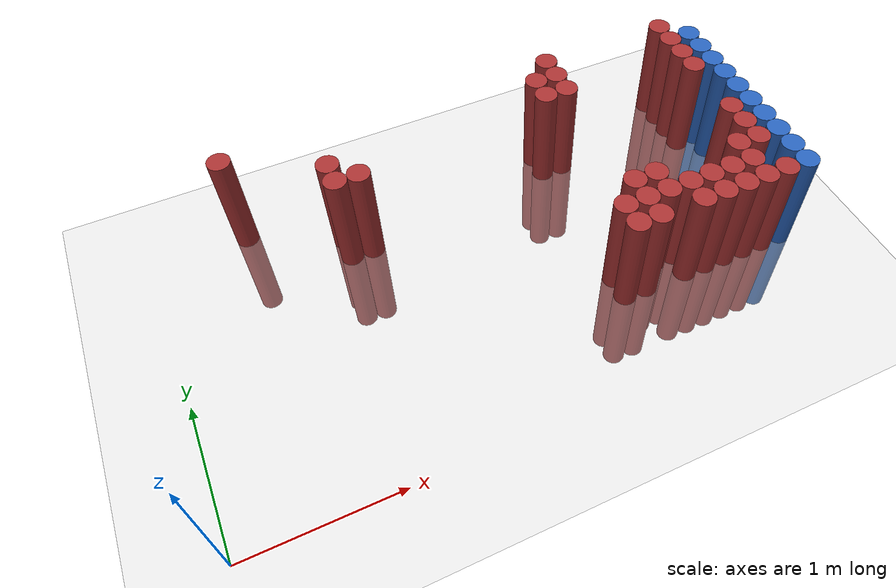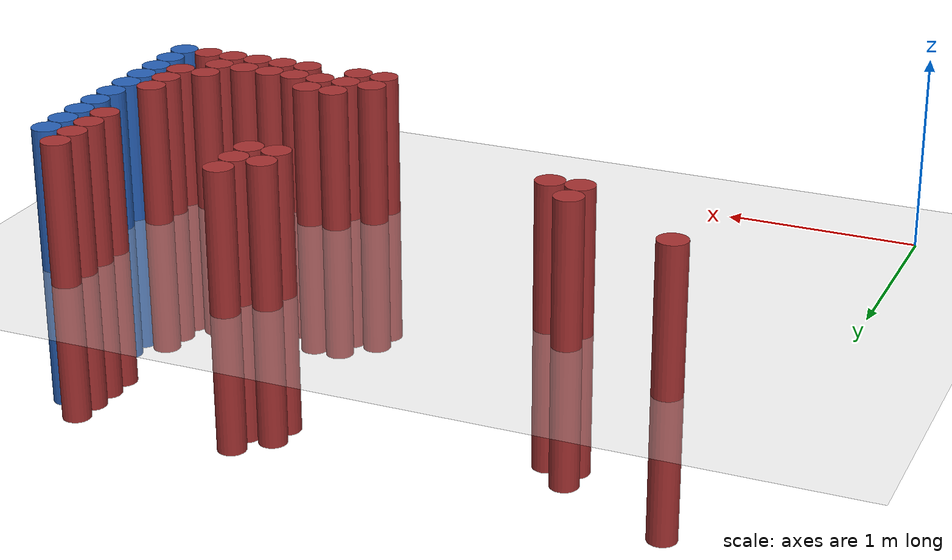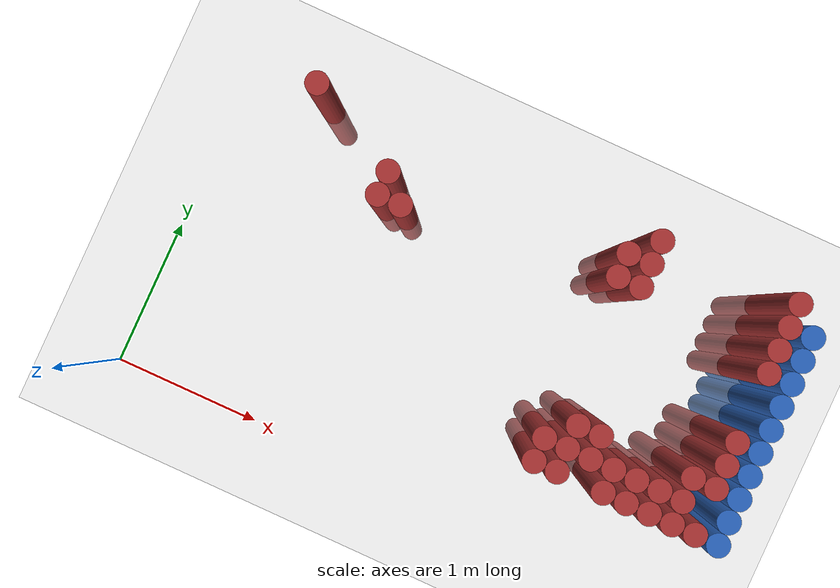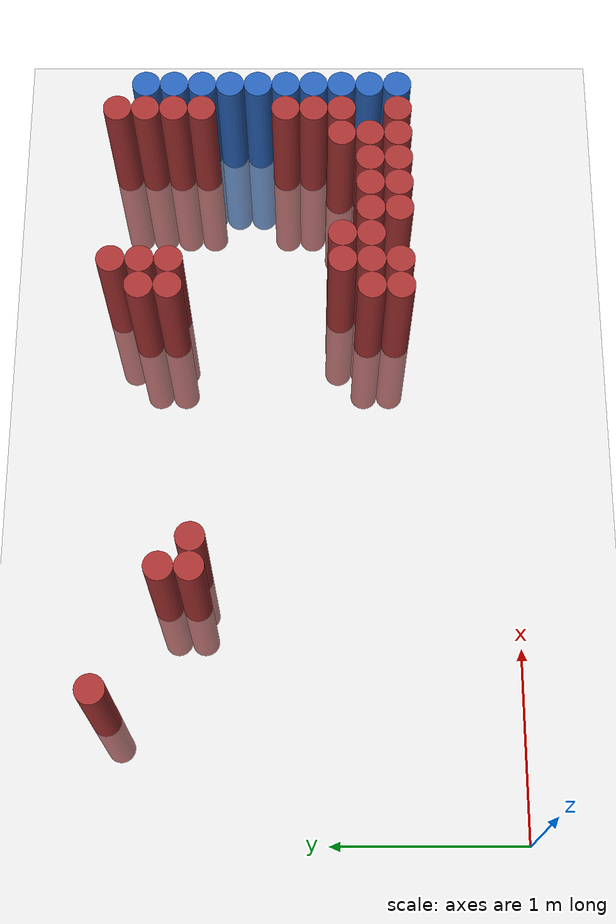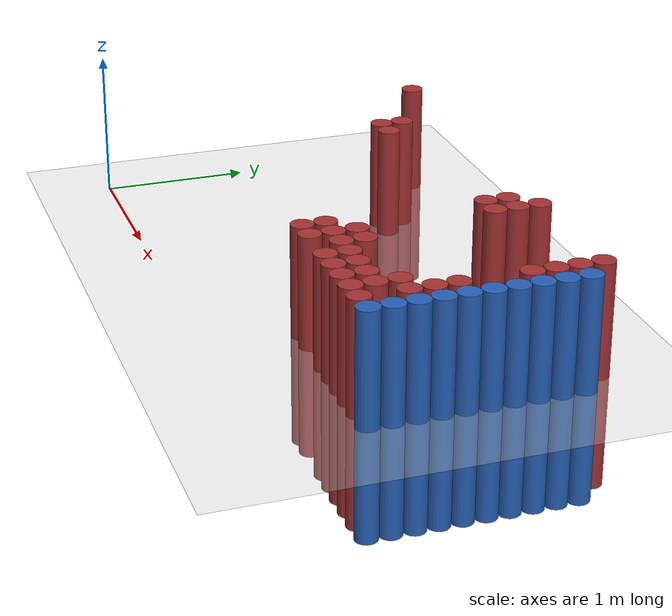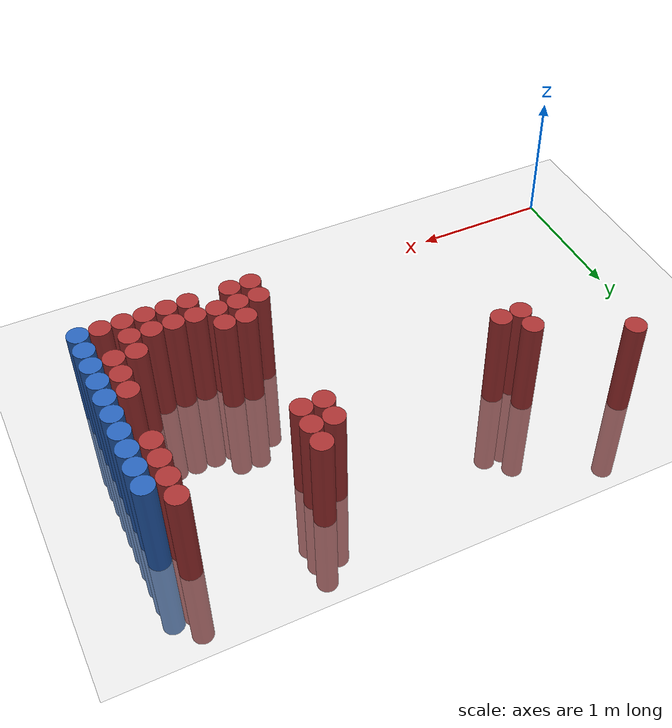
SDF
<sdf version="1.6">
 <world name="default">
  <model name="ground_plane">
   <static>1</static>
   <link name="link">
    <collision name="collision">
     <geometry><plane><normal>0 0 1</normal><size>100 100</size></plane></geometry>
     <surface><friction><ode><mu>100</mu><mu2>50</mu2></ode></friction></surface>
    </collision>
    <visual name="visual">
     <cast_shadows>0</cast_shadows>
     <geometry><plane><normal>0 0 1</normal><size>100 100</size></plane></geometry>
     <material>
      <script><uri>file://media/materials/scripts/gazebo.material</uri><name>Gazebo/Grey</name></script>
     </material>
    </visual>
   </link>
  </model>
  <model name="unit_cylinder_122">
   <static>1</static>
   <pose>3.925000 0.625000 0.000000 0.000000 0.000000 0.000000</pose>
   <link name="link">
    <inertial>
     <mass>1</mass>
     <inertia><ixx>0.145833</ixx><ixy>0</ixy><ixz>0</ixz><iyy>0.145833</iyy><iyz>0</iyz><izz>0.125</izz></inertia>
    </inertial>
    <collision name="collision">
     <geometry><cylinder><radius>0.075000</radius><length>1.5</length></cylinder></geometry>
    </collision>
    <visual name="visual">
     <geometry><cylinder><radius>0.075000</radius><length>1.5</length></cylinder></geometry>
     <material>
      <ambient>0.152000 0.379000 0.720000 1</ambient>
      <diffuse>0.152000 0.379000 0.720000 1</diffuse>
     </material>
     <material>
      <script><name>Gazebo/Grey</name><uri>file://media/materials/scripts/gazebo.material</uri></script>
     </material>
    </visual>
   </link>
  </model>
  <model name="unit_cylinder_124">
   <static>1</static>
   <pose>3.925000 0.775000 0.000000 0.000000 0.000000 0.000000</pose>
   <link name="link">
    <inertial>
     <mass>1</mass>
     <inertia><ixx>0.145833</ixx><ixy>0</ixy><ixz>0</ixz><iyy>0.145833</iyy><iyz>0</iyz><izz>0.125</izz></inertia>
    </inertial>
    <collision name="collision">
     <geometry><cylinder><radius>0.075000</radius><length>1.5</length></cylinder></geometry>
    </collision>
    <visual name="visual">
     <geometry><cylinder><radius>0.075000</radius><length>1.5</length></cylinder></geometry>
     <material>
      <ambient>0.152000 0.379000 0.720000 1</ambient>
      <diffuse>0.152000 0.379000 0.720000 1</diffuse>
     </material>
     <material>
      <script><name>Gazebo/Grey</name><uri>file://media/materials/scripts/gazebo.material</uri></script>
     </material>
    </visual>
   </link>
  </model>
  <model name="unit_cylinder_126">
   <static>1</static>
   <pose>3.925000 0.925000 0.000000 0.000000 0.000000 0.000000</pose>
   <link name="link">
    <inertial>
     <mass>1</mass>
     <inertia><ixx>0.145833</ixx><ixy>0</ixy><ixz>0</ixz><iyy>0.145833</iyy><iyz>0</iyz><izz>0.125</izz></inertia>
    </inertial>
    <collision name="collision">
     <geometry><cylinder><radius>0.075000</radius><length>1.5</length></cylinder></geometry>
    </collision>
    <visual name="visual">
     <geometry><cylinder><radius>0.075000</radius><length>1.5</length></cylinder></geometry>
     <material>
      <ambient>0.152000 0.379000 0.720000 1</ambient>
      <diffuse>0.152000 0.379000 0.720000 1</diffuse>
     </material>
     <material>
      <script><name>Gazebo/Grey</name><uri>file://media/materials/scripts/gazebo.material</uri></script>
     </material>
    </visual>
   </link>
  </model>
  <model name="unit_cylinder_128">
   <static>1</static>
   <pose>3.925000 1.075000 0.000000 0.000000 0.000000 0.000000</pose>
   <link name="link">
    <inertial>
     <mass>1</mass>
     <inertia><ixx>0.145833</ixx><ixy>0</ixy><ixz>0</ixz><iyy>0.145833</iyy><iyz>0</iyz><izz>0.125</izz></inertia>
    </inertial>
    <collision name="collision">
     <geometry><cylinder><radius>0.075000</radius><length>1.5</length></cylinder></geometry>
    </collision>
    <visual name="visual">
     <geometry><cylinder><radius>0.075000</radius><length>1.5</length></cylinder></geometry>
     <material>
      <ambient>0.152000 0.379000 0.720000 1</ambient>
      <diffuse>0.152000 0.379000 0.720000 1</diffuse>
     </material>
     <material>
      <script><name>Gazebo/Grey</name><uri>file://media/materials/scripts/gazebo.material</uri></script>
     </material>
    </visual>
   </link>
  </model>
  <model name="unit_cylinder_130">
   <static>1</static>
   <pose>3.925000 1.225000 0.000000 0.000000 0.000000 0.000000</pose>
   <link name="link">
    <inertial>
     <mass>1</mass>
     <inertia><ixx>0.145833</ixx><ixy>0</ixy><ixz>0</ixz><iyy>0.145833</iyy><iyz>0</iyz><izz>0.125</izz></inertia>
    </inertial>
    <collision name="collision">
     <geometry><cylinder><radius>0.075000</radius><length>1.5</length></cylinder></geometry>
    </collision>
    <visual name="visual">
     <geometry><cylinder><radius>0.075000</radius><length>1.5</length></cylinder></geometry>
     <material>
      <ambient>0.152000 0.379000 0.720000 1</ambient>
      <diffuse>0.152000 0.379000 0.720000 1</diffuse>
     </material>
     <material>
      <script><name>Gazebo/Grey</name><uri>file://media/materials/scripts/gazebo.material</uri></script>
     </material>
    </visual>
   </link>
  </model>
  <model name="unit_cylinder_132">
   <static>1</static>
   <pose>3.925000 1.375000 0.000000 0.000000 0.000000 0.000000</pose>
   <link name="link">
    <inertial>
     <mass>1</mass>
     <inertia><ixx>0.145833</ixx><ixy>0</ixy><ixz>0</ixz><iyy>0.145833</iyy><iyz>0</iyz><izz>0.125</izz></inertia>
    </inertial>
    <collision name="collision">
     <geometry><cylinder><radius>0.075000</radius><length>1.5</length></cylinder></geometry>
    </collision>
    <visual name="visual">
     <geometry><cylinder><radius>0.075000</radius><length>1.5</length></cylinder></geometry>
     <material>
      <ambient>0.152000 0.379000 0.720000 1</ambient>
      <diffuse>0.152000 0.379000 0.720000 1</diffuse>
     </material>
     <material>
      <script><name>Gazebo/Grey</name><uri>file://media/materials/scripts/gazebo.material</uri></script>
     </material>
    </visual>
   </link>
  </model>
  <model name="unit_cylinder_134">
   <static>1</static>
   <pose>3.925000 1.525000 0.000000 0.000000 0.000000 0.000000</pose>
   <link name="link">
    <inertial>
     <mass>1</mass>
     <inertia><ixx>0.145833</ixx><ixy>0</ixy><ixz>0</ixz><iyy>0.145833</iyy><iyz>0</iyz><izz>0.125</izz></inertia>
    </inertial>
    <collision name="collision">
     <geometry><cylinder><radius>0.075000</radius><length>1.5</length></cylinder></geometry>
    </collision>
    <visual name="visual">
     <geometry><cylinder><radius>0.075000</radius><length>1.5</length></cylinder></geometry>
     <material>
      <ambient>0.152000 0.379000 0.720000 1</ambient>
      <diffuse>0.152000 0.379000 0.720000 1</diffuse>
     </material>
     <material>
      <script><name>Gazebo/Grey</name><uri>file://media/materials/scripts/gazebo.material</uri></script>
     </material>
    </visual>
   </link>
  </model>
  <model name="unit_cylinder_136">
   <static>1</static>
   <pose>3.925000 1.675000 0.000000 0.000000 0.000000 0.000000</pose>
   <link name="link">
    <inertial>
     <mass>1</mass>
     <inertia><ixx>0.145833</ixx><ixy>0</ixy><ixz>0</ixz><iyy>0.145833</iyy><iyz>0</iyz><izz>0.125</izz></inertia>
    </inertial>
    <collision name="collision">
     <geometry><cylinder><radius>0.075000</radius><length>1.5</length></cylinder></geometry>
    </collision>
    <visual name="visual">
     <geometry><cylinder><radius>0.075000</radius><length>1.5</length></cylinder></geometry>
     <material>
      <ambient>0.152000 0.379000 0.720000 1</ambient>
      <diffuse>0.152000 0.379000 0.720000 1</diffuse>
     </material>
     <material>
      <script><name>Gazebo/Grey</name><uri>file://media/materials/scripts/gazebo.material</uri></script>
     </material>
    </visual>
   </link>
  </model>
  <model name="unit_cylinder_138">
   <static>1</static>
   <pose>3.925000 1.825000 0.000000 0.000000 0.000000 0.000000</pose>
   <link name="link">
    <inertial>
     <mass>1</mass>
     <inertia><ixx>0.145833</ixx><ixy>0</ixy><ixz>0</ixz><iyy>0.145833</iyy><iyz>0</iyz><izz>0.125</izz></inertia>
    </inertial>
    <collision name="collision">
     <geometry><cylinder><radius>0.075000</radius><length>1.5</length></cylinder></geometry>
    </collision>
    <visual name="visual">
     <geometry><cylinder><radius>0.075000</radius><length>1.5</length></cylinder></geometry>
     <material>
      <ambient>0.152000 0.379000 0.720000 1</ambient>
      <diffuse>0.152000 0.379000 0.720000 1</diffuse>
     </material>
     <material>
      <script><name>Gazebo/Grey</name><uri>file://media/materials/scripts/gazebo.material</uri></script>
     </material>
    </visual>
   </link>
  </model>
  <model name="unit_cylinder_140">
   <static>1</static>
   <pose>3.925000 1.975000 0.000000 0.000000 0.000000 0.000000</pose>
   <link name="link">
    <inertial>
     <mass>1</mass>
     <inertia><ixx>0.145833</ixx><ixy>0</ixy><ixz>0</ixz><iyy>0.145833</iyy><iyz>0</iyz><izz>0.125</izz></inertia>
    </inertial>
    <collision name="collision">
     <geometry><cylinder><radius>0.075000</radius><length>1.5</length></cylinder></geometry>
    </collision>
    <visual name="visual">
     <geometry><cylinder><radius>0.075000</radius><length>1.5</length></cylinder></geometry>
     <material>
      <ambient>0.152000 0.379000 0.720000 1</ambient>
      <diffuse>0.152000 0.379000 0.720000 1</diffuse>
     </material>
     <material>
      <script><name>Gazebo/Grey</name><uri>file://media/materials/scripts/gazebo.material</uri></script>
     </material>
    </visual>
   </link>
  </model>
  <model name="unit_cylinder_388">
   <static>1</static>
   <pose>0.625000 2.125000 0.000000 0.000000 0.000000 0.000000</pose>
   <link name="link">
    <inertial>
     <mass>1</mass>
     <inertia><ixx>0.145833</ixx><ixy>0</ixy><ixz>0</ixz><iyy>0.145833</iyy><iyz>0</iyz><izz>0.125</izz></inertia>
    </inertial>
    <collision name="collision">
     <geometry><cylinder><radius>0.075000</radius><length>1.5</length></cylinder></geometry>
    </collision>
    <visual name="visual">
     <geometry><cylinder><radius>0.075000</radius><length>1.5</length></cylinder></geometry>
     <material>
      <ambient>0.648000 0.192000 0.192000 1</ambient>
      <diffuse>0.648000 0.192000 0.192000 1</diffuse>
     </material>
     <material>
      <script><name>Gazebo/Grey</name><uri>file://media/materials/scripts/gazebo.material</uri></script>
     </material>
    </visual>
   </link>
  </model>
  <model name="unit_cylinder_411">
   <static>1</static>
   <pose>1.225000 1.675000 0.000000 0.000000 0.000000 0.000000</pose>
   <link name="link">
    <inertial>
     <mass>1</mass>
     <inertia><ixx>0.145833</ixx><ixy>0</ixy><ixz>0</ixz><iyy>0.145833</iyy><iyz>0</iyz><izz>0.125</izz></inertia>
    </inertial>
    <collision name="collision">
     <geometry><cylinder><radius>0.075000</radius><length>1.5</length></cylinder></geometry>
    </collision>
    <visual name="visual">
     <geometry><cylinder><radius>0.075000</radius><length>1.5</length></cylinder></geometry>
     <material>
      <ambient>0.648000 0.192000 0.192000 1</ambient>
      <diffuse>0.648000 0.192000 0.192000 1</diffuse>
     </material>
     <material>
      <script><name>Gazebo/Grey</name><uri>file://media/materials/scripts/gazebo.material</uri></script>
     </material>
    </visual>
   </link>
  </model>
  <model name="unit_cylinder_412">
   <static>1</static>
   <pose>1.225000 1.825000 0.000000 0.000000 0.000000 0.000000</pose>
   <link name="link">
    <inertial>
     <mass>1</mass>
     <inertia><ixx>0.145833</ixx><ixy>0</ixy><ixz>0</ixz><iyy>0.145833</iyy><iyz>0</iyz><izz>0.125</izz></inertia>
    </inertial>
    <collision name="collision">
     <geometry><cylinder><radius>0.075000</radius><length>1.5</length></cylinder></geometry>
    </collision>
    <visual name="visual">
     <geometry><cylinder><radius>0.075000</radius><length>1.5</length></cylinder></geometry>
     <material>
      <ambient>0.648000 0.192000 0.192000 1</ambient>
      <diffuse>0.648000 0.192000 0.192000 1</diffuse>
     </material>
     <material>
      <script><name>Gazebo/Grey</name><uri>file://media/materials/scripts/gazebo.material</uri></script>
     </material>
    </visual>
   </link>
  </model>
  <model name="unit_cylinder_418">
   <static>1</static>
   <pose>1.375000 1.675000 0.000000 0.000000 0.000000 0.000000</pose>
   <link name="link">
    <inertial>
     <mass>1</mass>
     <inertia><ixx>0.145833</ixx><ixy>0</ixy><ixz>0</ixz><iyy>0.145833</iyy><iyz>0</iyz><izz>0.125</izz></inertia>
    </inertial>
    <collision name="collision">
     <geometry><cylinder><radius>0.075000</radius><length>1.5</length></cylinder></geometry>
    </collision>
    <visual name="visual">
     <geometry><cylinder><radius>0.075000</radius><length>1.5</length></cylinder></geometry>
     <material>
      <ambient>0.648000 0.192000 0.192000 1</ambient>
      <diffuse>0.648000 0.192000 0.192000 1</diffuse>
     </material>
     <material>
      <script><name>Gazebo/Grey</name><uri>file://media/materials/scripts/gazebo.material</uri></script>
     </material>
    </visual>
   </link>
  </model>
  <model name="unit_cylinder_442">
   <static>1</static>
   <pose>2.725000 0.625000 0.000000 0.000000 0.000000 0.000000</pose>
   <link name="link">
    <inertial>
     <mass>1</mass>
     <inertia><ixx>0.145833</ixx><ixy>0</ixy><ixz>0</ixz><iyy>0.145833</iyy><iyz>0</iyz><izz>0.125</izz></inertia>
    </inertial>
    <collision name="collision">
     <geometry><cylinder><radius>0.075000</radius><length>1.5</length></cylinder></geometry>
    </collision>
    <visual name="visual">
     <geometry><cylinder><radius>0.075000</radius><length>1.5</length></cylinder></geometry>
     <material>
      <ambient>0.648000 0.192000 0.192000 1</ambient>
      <diffuse>0.648000 0.192000 0.192000 1</diffuse>
     </material>
     <material>
      <script><name>Gazebo/Grey</name><uri>file://media/materials/scripts/gazebo.material</uri></script>
     </material>
    </visual>
   </link>
  </model>
  <model name="unit_cylinder_443">
   <static>1</static>
   <pose>2.725000 0.775000 0.000000 0.000000 0.000000 0.000000</pose>
   <link name="link">
    <inertial>
     <mass>1</mass>
     <inertia><ixx>0.145833</ixx><ixy>0</ixy><ixz>0</ixz><iyy>0.145833</iyy><iyz>0</iyz><izz>0.125</izz></inertia>
    </inertial>
    <collision name="collision">
     <geometry><cylinder><radius>0.075000</radius><length>1.5</length></cylinder></geometry>
    </collision>
    <visual name="visual">
     <geometry><cylinder><radius>0.075000</radius><length>1.5</length></cylinder></geometry>
     <material>
      <ambient>0.648000 0.192000 0.192000 1</ambient>
      <diffuse>0.648000 0.192000 0.192000 1</diffuse>
     </material>
     <material>
      <script><name>Gazebo/Grey</name><uri>file://media/materials/scripts/gazebo.material</uri></script>
     </material>
    </visual>
   </link>
  </model>
  <model name="unit_cylinder_444">
   <static>1</static>
   <pose>2.725000 1.825000 0.000000 0.000000 0.000000 0.000000</pose>
   <link name="link">
    <inertial>
     <mass>1</mass>
     <inertia><ixx>0.145833</ixx><ixy>0</ixy><ixz>0</ixz><iyy>0.145833</iyy><iyz>0</iyz><izz>0.125</izz></inertia>
    </inertial>
    <collision name="collision">
     <geometry><cylinder><radius>0.075000</radius><length>1.5</length></cylinder></geometry>
    </collision>
    <visual name="visual">
     <geometry><cylinder><radius>0.075000</radius><length>1.5</length></cylinder></geometry>
     <material>
      <ambient>0.648000 0.192000 0.192000 1</ambient>
      <diffuse>0.648000 0.192000 0.192000 1</diffuse>
     </material>
     <material>
      <script><name>Gazebo/Grey</name><uri>file://media/materials/scripts/gazebo.material</uri></script>
     </material>
    </visual>
   </link>
  </model>
  <model name="unit_cylinder_445">
   <static>1</static>
   <pose>2.725000 1.975000 0.000000 0.000000 0.000000 0.000000</pose>
   <link name="link">
    <inertial>
     <mass>1</mass>
     <inertia><ixx>0.145833</ixx><ixy>0</ixy><ixz>0</ixz><iyy>0.145833</iyy><iyz>0</iyz><izz>0.125</izz></inertia>
    </inertial>
    <collision name="collision">
     <geometry><cylinder><radius>0.075000</radius><length>1.5</length></cylinder></geometry>
    </collision>
    <visual name="visual">
     <geometry><cylinder><radius>0.075000</radius><length>1.5</length></cylinder></geometry>
     <material>
      <ambient>0.648000 0.192000 0.192000 1</ambient>
      <diffuse>0.648000 0.192000 0.192000 1</diffuse>
     </material>
     <material>
      <script><name>Gazebo/Grey</name><uri>file://media/materials/scripts/gazebo.material</uri></script>
     </material>
    </visual>
   </link>
  </model>
  <model name="unit_cylinder_451">
   <static>1</static>
   <pose>2.875000 0.625000 0.000000 0.000000 0.000000 0.000000</pose>
   <link name="link">
    <inertial>
     <mass>1</mass>
     <inertia><ixx>0.145833</ixx><ixy>0</ixy><ixz>0</ixz><iyy>0.145833</iyy><iyz>0</iyz><izz>0.125</izz></inertia>
    </inertial>
    <collision name="collision">
     <geometry><cylinder><radius>0.075000</radius><length>1.5</length></cylinder></geometry>
    </collision>
    <visual name="visual">
     <geometry><cylinder><radius>0.075000</radius><length>1.5</length></cylinder></geometry>
     <material>
      <ambient>0.648000 0.192000 0.192000 1</ambient>
      <diffuse>0.648000 0.192000 0.192000 1</diffuse>
     </material>
     <material>
      <script><name>Gazebo/Grey</name><uri>file://media/materials/scripts/gazebo.material</uri></script>
     </material>
    </visual>
   </link>
  </model>
  <model name="unit_cylinder_452">
   <static>1</static>
   <pose>2.875000 0.775000 0.000000 0.000000 0.000000 0.000000</pose>
   <link name="link">
    <inertial>
     <mass>1</mass>
     <inertia><ixx>0.145833</ixx><ixy>0</ixy><ixz>0</ixz><iyy>0.145833</iyy><iyz>0</iyz><izz>0.125</izz></inertia>
    </inertial>
    <collision name="collision">
     <geometry><cylinder><radius>0.075000</radius><length>1.5</length></cylinder></geometry>
    </collision>
    <visual name="visual">
     <geometry><cylinder><radius>0.075000</radius><length>1.5</length></cylinder></geometry>
     <material>
      <ambient>0.648000 0.192000 0.192000 1</ambient>
      <diffuse>0.648000 0.192000 0.192000 1</diffuse>
     </material>
     <material>
      <script><name>Gazebo/Grey</name><uri>file://media/materials/scripts/gazebo.material</uri></script>
     </material>
    </visual>
   </link>
  </model>
  <model name="unit_cylinder_453">
   <static>1</static>
   <pose>2.875000 0.925000 0.000000 0.000000 0.000000 0.000000</pose>
   <link name="link">
    <inertial>
     <mass>1</mass>
     <inertia><ixx>0.145833</ixx><ixy>0</ixy><ixz>0</ixz><iyy>0.145833</iyy><iyz>0</iyz><izz>0.125</izz></inertia>
    </inertial>
    <collision name="collision">
     <geometry><cylinder><radius>0.075000</radius><length>1.5</length></cylinder></geometry>
    </collision>
    <visual name="visual">
     <geometry><cylinder><radius>0.075000</radius><length>1.5</length></cylinder></geometry>
     <material>
      <ambient>0.648000 0.192000 0.192000 1</ambient>
      <diffuse>0.648000 0.192000 0.192000 1</diffuse>
     </material>
     <material>
      <script><name>Gazebo/Grey</name><uri>file://media/materials/scripts/gazebo.material</uri></script>
     </material>
    </visual>
   </link>
  </model>
  <model name="unit_cylinder_454">
   <static>1</static>
   <pose>2.875000 1.825000 0.000000 0.000000 0.000000 0.000000</pose>
   <link name="link">
    <inertial>
     <mass>1</mass>
     <inertia><ixx>0.145833</ixx><ixy>0</ixy><ixz>0</ixz><iyy>0.145833</iyy><iyz>0</iyz><izz>0.125</izz></inertia>
    </inertial>
    <collision name="collision">
     <geometry><cylinder><radius>0.075000</radius><length>1.5</length></cylinder></geometry>
    </collision>
    <visual name="visual">
     <geometry><cylinder><radius>0.075000</radius><length>1.5</length></cylinder></geometry>
     <material>
      <ambient>0.648000 0.192000 0.192000 1</ambient>
      <diffuse>0.648000 0.192000 0.192000 1</diffuse>
     </material>
     <material>
      <script><name>Gazebo/Grey</name><uri>file://media/materials/scripts/gazebo.material</uri></script>
     </material>
    </visual>
   </link>
  </model>
  <model name="unit_cylinder_455">
   <static>1</static>
   <pose>2.875000 1.975000 0.000000 0.000000 0.000000 0.000000</pose>
   <link name="link">
    <inertial>
     <mass>1</mass>
     <inertia><ixx>0.145833</ixx><ixy>0</ixy><ixz>0</ixz><iyy>0.145833</iyy><iyz>0</iyz><izz>0.125</izz></inertia>
    </inertial>
    <collision name="collision">
     <geometry><cylinder><radius>0.075000</radius><length>1.5</length></cylinder></geometry>
    </collision>
    <visual name="visual">
     <geometry><cylinder><radius>0.075000</radius><length>1.5</length></cylinder></geometry>
     <material>
      <ambient>0.648000 0.192000 0.192000 1</ambient>
      <diffuse>0.648000 0.192000 0.192000 1</diffuse>
     </material>
     <material>
      <script><name>Gazebo/Grey</name><uri>file://media/materials/scripts/gazebo.material</uri></script>
     </material>
    </visual>
   </link>
  </model>
  <model name="unit_cylinder_456">
   <static>1</static>
   <pose>2.875000 2.125000 0.000000 0.000000 0.000000 0.000000</pose>
   <link name="link">
    <inertial>
     <mass>1</mass>
     <inertia><ixx>0.145833</ixx><ixy>0</ixy><ixz>0</ixz><iyy>0.145833</iyy><iyz>0</iyz><izz>0.125</izz></inertia>
    </inertial>
    <collision name="collision">
     <geometry><cylinder><radius>0.075000</radius><length>1.5</length></cylinder></geometry>
    </collision>
    <visual name="visual">
     <geometry><cylinder><radius>0.075000</radius><length>1.5</length></cylinder></geometry>
     <material>
      <ambient>0.648000 0.192000 0.192000 1</ambient>
      <diffuse>0.648000 0.192000 0.192000 1</diffuse>
     </material>
     <material>
      <script><name>Gazebo/Grey</name><uri>file://media/materials/scripts/gazebo.material</uri></script>
     </material>
    </visual>
   </link>
  </model>
  <model name="unit_cylinder_459">
   <static>1</static>
   <pose>3.025000 0.775000 0.000000 0.000000 0.000000 0.000000</pose>
   <link name="link">
    <inertial>
     <mass>1</mass>
     <inertia><ixx>0.145833</ixx><ixy>0</ixy><ixz>0</ixz><iyy>0.145833</iyy><iyz>0</iyz><izz>0.125</izz></inertia>
    </inertial>
    <collision name="collision">
     <geometry><cylinder><radius>0.075000</radius><length>1.5</length></cylinder></geometry>
    </collision>
    <visual name="visual">
     <geometry><cylinder><radius>0.075000</radius><length>1.5</length></cylinder></geometry>
     <material>
      <ambient>0.648000 0.192000 0.192000 1</ambient>
      <diffuse>0.648000 0.192000 0.192000 1</diffuse>
     </material>
     <material>
      <script><name>Gazebo/Grey</name><uri>file://media/materials/scripts/gazebo.material</uri></script>
     </material>
    </visual>
   </link>
  </model>
  <model name="unit_cylinder_460">
   <static>1</static>
   <pose>3.025000 0.925000 0.000000 0.000000 0.000000 0.000000</pose>
   <link name="link">
    <inertial>
     <mass>1</mass>
     <inertia><ixx>0.145833</ixx><ixy>0</ixy><ixz>0</ixz><iyy>0.145833</iyy><iyz>0</iyz><izz>0.125</izz></inertia>
    </inertial>
    <collision name="collision">
     <geometry><cylinder><radius>0.075000</radius><length>1.5</length></cylinder></geometry>
    </collision>
    <visual name="visual">
     <geometry><cylinder><radius>0.075000</radius><length>1.5</length></cylinder></geometry>
     <material>
      <ambient>0.648000 0.192000 0.192000 1</ambient>
      <diffuse>0.648000 0.192000 0.192000 1</diffuse>
     </material>
     <material>
      <script><name>Gazebo/Grey</name><uri>file://media/materials/scripts/gazebo.material</uri></script>
     </material>
    </visual>
   </link>
  </model>
  <model name="unit_cylinder_470">
   <static>1</static>
   <pose>3.175000 0.625000 0.000000 0.000000 0.000000 0.000000</pose>
   <link name="link">
    <inertial>
     <mass>1</mass>
     <inertia><ixx>0.145833</ixx><ixy>0</ixy><ixz>0</ixz><iyy>0.145833</iyy><iyz>0</iyz><izz>0.125</izz></inertia>
    </inertial>
    <collision name="collision">
     <geometry><cylinder><radius>0.075000</radius><length>1.5</length></cylinder></geometry>
    </collision>
    <visual name="visual">
     <geometry><cylinder><radius>0.075000</radius><length>1.5</length></cylinder></geometry>
     <material>
      <ambient>0.648000 0.192000 0.192000 1</ambient>
      <diffuse>0.648000 0.192000 0.192000 1</diffuse>
     </material>
     <material>
      <script><name>Gazebo/Grey</name><uri>file://media/materials/scripts/gazebo.material</uri></script>
     </material>
    </visual>
   </link>
  </model>
  <model name="unit_cylinder_471">
   <static>1</static>
   <pose>3.175000 0.775000 0.000000 0.000000 0.000000 0.000000</pose>
   <link name="link">
    <inertial>
     <mass>1</mass>
     <inertia><ixx>0.145833</ixx><ixy>0</ixy><ixz>0</ixz><iyy>0.145833</iyy><iyz>0</iyz><izz>0.125</izz></inertia>
    </inertial>
    <collision name="collision">
     <geometry><cylinder><radius>0.075000</radius><length>1.5</length></cylinder></geometry>
    </collision>
    <visual name="visual">
     <geometry><cylinder><radius>0.075000</radius><length>1.5</length></cylinder></geometry>
     <material>
      <ambient>0.648000 0.192000 0.192000 1</ambient>
      <diffuse>0.648000 0.192000 0.192000 1</diffuse>
     </material>
     <material>
      <script><name>Gazebo/Grey</name><uri>file://media/materials/scripts/gazebo.material</uri></script>
     </material>
    </visual>
   </link>
  </model>
  <model name="unit_cylinder_478">
   <static>1</static>
   <pose>3.325000 0.625000 0.000000 0.000000 0.000000 0.000000</pose>
   <link name="link">
    <inertial>
     <mass>1</mass>
     <inertia><ixx>0.145833</ixx><ixy>0</ixy><ixz>0</ixz><iyy>0.145833</iyy><iyz>0</iyz><izz>0.125</izz></inertia>
    </inertial>
    <collision name="collision">
     <geometry><cylinder><radius>0.075000</radius><length>1.5</length></cylinder></geometry>
    </collision>
    <visual name="visual">
     <geometry><cylinder><radius>0.075000</radius><length>1.5</length></cylinder></geometry>
     <material>
      <ambient>0.648000 0.192000 0.192000 1</ambient>
      <diffuse>0.648000 0.192000 0.192000 1</diffuse>
     </material>
     <material>
      <script><name>Gazebo/Grey</name><uri>file://media/materials/scripts/gazebo.material</uri></script>
     </material>
    </visual>
   </link>
  </model>
  <model name="unit_cylinder_479">
   <static>1</static>
   <pose>3.325000 0.775000 0.000000 0.000000 0.000000 0.000000</pose>
   <link name="link">
    <inertial>
     <mass>1</mass>
     <inertia><ixx>0.145833</ixx><ixy>0</ixy><ixz>0</ixz><iyy>0.145833</iyy><iyz>0</iyz><izz>0.125</izz></inertia>
    </inertial>
    <collision name="collision">
     <geometry><cylinder><radius>0.075000</radius><length>1.5</length></cylinder></geometry>
    </collision>
    <visual name="visual">
     <geometry><cylinder><radius>0.075000</radius><length>1.5</length></cylinder></geometry>
     <material>
      <ambient>0.648000 0.192000 0.192000 1</ambient>
      <diffuse>0.648000 0.192000 0.192000 1</diffuse>
     </material>
     <material>
      <script><name>Gazebo/Grey</name><uri>file://media/materials/scripts/gazebo.material</uri></script>
     </material>
    </visual>
   </link>
  </model>
  <model name="unit_cylinder_483">
   <static>1</static>
   <pose>3.475000 0.625000 0.000000 0.000000 0.000000 0.000000</pose>
   <link name="link">
    <inertial>
     <mass>1</mass>
     <inertia><ixx>0.145833</ixx><ixy>0</ixy><ixz>0</ixz><iyy>0.145833</iyy><iyz>0</iyz><izz>0.125</izz></inertia>
    </inertial>
    <collision name="collision">
     <geometry><cylinder><radius>0.075000</radius><length>1.5</length></cylinder></geometry>
    </collision>
    <visual name="visual">
     <geometry><cylinder><radius>0.075000</radius><length>1.5</length></cylinder></geometry>
     <material>
      <ambient>0.648000 0.192000 0.192000 1</ambient>
      <diffuse>0.648000 0.192000 0.192000 1</diffuse>
     </material>
     <material>
      <script><name>Gazebo/Grey</name><uri>file://media/materials/scripts/gazebo.material</uri></script>
     </material>
    </visual>
   </link>
  </model>
  <model name="unit_cylinder_484">
   <static>1</static>
   <pose>3.475000 0.775000 0.000000 0.000000 0.000000 0.000000</pose>
   <link name="link">
    <inertial>
     <mass>1</mass>
     <inertia><ixx>0.145833</ixx><ixy>0</ixy><ixz>0</ixz><iyy>0.145833</iyy><iyz>0</iyz><izz>0.125</izz></inertia>
    </inertial>
    <collision name="collision">
     <geometry><cylinder><radius>0.075000</radius><length>1.5</length></cylinder></geometry>
    </collision>
    <visual name="visual">
     <geometry><cylinder><radius>0.075000</radius><length>1.5</length></cylinder></geometry>
     <material>
      <ambient>0.648000 0.192000 0.192000 1</ambient>
      <diffuse>0.648000 0.192000 0.192000 1</diffuse>
     </material>
     <material>
      <script><name>Gazebo/Grey</name><uri>file://media/materials/scripts/gazebo.material</uri></script>
     </material>
    </visual>
   </link>
  </model>
  <model name="unit_cylinder_491">
   <static>1</static>
   <pose>3.625000 0.625000 0.000000 0.000000 0.000000 0.000000</pose>
   <link name="link">
    <inertial>
     <mass>1</mass>
     <inertia><ixx>0.145833</ixx><ixy>0</ixy><ixz>0</ixz><iyy>0.145833</iyy><iyz>0</iyz><izz>0.125</izz></inertia>
    </inertial>
    <collision name="collision">
     <geometry><cylinder><radius>0.075000</radius><length>1.5</length></cylinder></geometry>
    </collision>
    <visual name="visual">
     <geometry><cylinder><radius>0.075000</radius><length>1.5</length></cylinder></geometry>
     <material>
      <ambient>0.648000 0.192000 0.192000 1</ambient>
      <diffuse>0.648000 0.192000 0.192000 1</diffuse>
     </material>
     <material>
      <script><name>Gazebo/Grey</name><uri>file://media/materials/scripts/gazebo.material</uri></script>
     </material>
    </visual>
   </link>
  </model>
  <model name="unit_cylinder_492">
   <static>1</static>
   <pose>3.625000 0.775000 0.000000 0.000000 0.000000 0.000000</pose>
   <link name="link">
    <inertial>
     <mass>1</mass>
     <inertia><ixx>0.145833</ixx><ixy>0</ixy><ixz>0</ixz><iyy>0.145833</iyy><iyz>0</iyz><izz>0.125</izz></inertia>
    </inertial>
    <collision name="collision">
     <geometry><cylinder><radius>0.075000</radius><length>1.5</length></cylinder></geometry>
    </collision>
    <visual name="visual">
     <geometry><cylinder><radius>0.075000</radius><length>1.5</length></cylinder></geometry>
     <material>
      <ambient>0.648000 0.192000 0.192000 1</ambient>
      <diffuse>0.648000 0.192000 0.192000 1</diffuse>
     </material>
     <material>
      <script><name>Gazebo/Grey</name><uri>file://media/materials/scripts/gazebo.material</uri></script>
     </material>
    </visual>
   </link>
  </model>
  <model name="unit_cylinder_493">
   <static>1</static>
   <pose>3.625000 0.925000 0.000000 0.000000 0.000000 0.000000</pose>
   <link name="link">
    <inertial>
     <mass>1</mass>
     <inertia><ixx>0.145833</ixx><ixy>0</ixy><ixz>0</ixz><iyy>0.145833</iyy><iyz>0</iyz><izz>0.125</izz></inertia>
    </inertial>
    <collision name="collision">
     <geometry><cylinder><radius>0.075000</radius><length>1.5</length></cylinder></geometry>
    </collision>
    <visual name="visual">
     <geometry><cylinder><radius>0.075000</radius><length>1.5</length></cylinder></geometry>
     <material>
      <ambient>0.648000 0.192000 0.192000 1</ambient>
      <diffuse>0.648000 0.192000 0.192000 1</diffuse>
     </material>
     <material>
      <script><name>Gazebo/Grey</name><uri>file://media/materials/scripts/gazebo.material</uri></script>
     </material>
    </visual>
   </link>
  </model>
  <model name="unit_cylinder_514">
   <static>1</static>
   <pose>3.775000 0.625000 0.000000 0.000000 0.000000 0.000000</pose>
   <link name="link">
    <inertial>
     <mass>1</mass>
     <inertia><ixx>0.145833</ixx><ixy>0</ixy><ixz>0</ixz><iyy>0.145833</iyy><iyz>0</iyz><izz>0.125</izz></inertia>
    </inertial>
    <collision name="collision">
     <geometry><cylinder><radius>0.075000</radius><length>1.5</length></cylinder></geometry>
    </collision>
    <visual name="visual">
     <geometry><cylinder><radius>0.075000</radius><length>1.5</length></cylinder></geometry>
     <material>
      <ambient>0.648000 0.192000 0.192000 1</ambient>
      <diffuse>0.648000 0.192000 0.192000 1</diffuse>
     </material>
     <material>
      <script><name>Gazebo/Grey</name><uri>file://media/materials/scripts/gazebo.material</uri></script>
     </material>
    </visual>
   </link>
  </model>
  <model name="unit_cylinder_515">
   <static>1</static>
   <pose>3.775000 0.925000 0.000000 0.000000 0.000000 0.000000</pose>
   <link name="link">
    <inertial>
     <mass>1</mass>
     <inertia><ixx>0.145833</ixx><ixy>0</ixy><ixz>0</ixz><iyy>0.145833</iyy><iyz>0</iyz><izz>0.125</izz></inertia>
    </inertial>
    <collision name="collision">
     <geometry><cylinder><radius>0.075000</radius><length>1.5</length></cylinder></geometry>
    </collision>
    <visual name="visual">
     <geometry><cylinder><radius>0.075000</radius><length>1.5</length></cylinder></geometry>
     <material>
      <ambient>0.648000 0.192000 0.192000 1</ambient>
      <diffuse>0.648000 0.192000 0.192000 1</diffuse>
     </material>
     <material>
      <script><name>Gazebo/Grey</name><uri>file://media/materials/scripts/gazebo.material</uri></script>
     </material>
    </visual>
   </link>
  </model>
  <model name="unit_cylinder_516">
   <static>1</static>
   <pose>3.775000 1.075000 0.000000 0.000000 0.000000 0.000000</pose>
   <link name="link">
    <inertial>
     <mass>1</mass>
     <inertia><ixx>0.145833</ixx><ixy>0</ixy><ixz>0</ixz><iyy>0.145833</iyy><iyz>0</iyz><izz>0.125</izz></inertia>
    </inertial>
    <collision name="collision">
     <geometry><cylinder><radius>0.075000</radius><length>1.5</length></cylinder></geometry>
    </collision>
    <visual name="visual">
     <geometry><cylinder><radius>0.075000</radius><length>1.5</length></cylinder></geometry>
     <material>
      <ambient>0.648000 0.192000 0.192000 1</ambient>
      <diffuse>0.648000 0.192000 0.192000 1</diffuse>
     </material>
     <material>
      <script><name>Gazebo/Grey</name><uri>file://media/materials/scripts/gazebo.material</uri></script>
     </material>
    </visual>
   </link>
  </model>
  <model name="unit_cylinder_517">
   <static>1</static>
   <pose>3.775000 1.225000 0.000000 0.000000 0.000000 0.000000</pose>
   <link name="link">
    <inertial>
     <mass>1</mass>
     <inertia><ixx>0.145833</ixx><ixy>0</ixy><ixz>0</ixz><iyy>0.145833</iyy><iyz>0</iyz><izz>0.125</izz></inertia>
    </inertial>
    <collision name="collision">
     <geometry><cylinder><radius>0.075000</radius><length>1.5</length></cylinder></geometry>
    </collision>
    <visual name="visual">
     <geometry><cylinder><radius>0.075000</radius><length>1.5</length></cylinder></geometry>
     <material>
      <ambient>0.648000 0.192000 0.192000 1</ambient>
      <diffuse>0.648000 0.192000 0.192000 1</diffuse>
     </material>
     <material>
      <script><name>Gazebo/Grey</name><uri>file://media/materials/scripts/gazebo.material</uri></script>
     </material>
    </visual>
   </link>
  </model>
  <model name="unit_cylinder_518">
   <static>1</static>
   <pose>3.775000 1.675000 0.000000 0.000000 0.000000 0.000000</pose>
   <link name="link">
    <inertial>
     <mass>1</mass>
     <inertia><ixx>0.145833</ixx><ixy>0</ixy><ixz>0</ixz><iyy>0.145833</iyy><iyz>0</iyz><izz>0.125</izz></inertia>
    </inertial>
    <collision name="collision">
     <geometry><cylinder><radius>0.075000</radius><length>1.5</length></cylinder></geometry>
    </collision>
    <visual name="visual">
     <geometry><cylinder><radius>0.075000</radius><length>1.5</length></cylinder></geometry>
     <material>
      <ambient>0.648000 0.192000 0.192000 1</ambient>
      <diffuse>0.648000 0.192000 0.192000 1</diffuse>
     </material>
     <material>
      <script><name>Gazebo/Grey</name><uri>file://media/materials/scripts/gazebo.material</uri></script>
     </material>
    </visual>
   </link>
  </model>
  <model name="unit_cylinder_519">
   <static>1</static>
   <pose>3.775000 1.825000 0.000000 0.000000 0.000000 0.000000</pose>
   <link name="link">
    <inertial>
     <mass>1</mass>
     <inertia><ixx>0.145833</ixx><ixy>0</ixy><ixz>0</ixz><iyy>0.145833</iyy><iyz>0</iyz><izz>0.125</izz></inertia>
    </inertial>
    <collision name="collision">
     <geometry><cylinder><radius>0.075000</radius><length>1.5</length></cylinder></geometry>
    </collision>
    <visual name="visual">
     <geometry><cylinder><radius>0.075000</radius><length>1.5</length></cylinder></geometry>
     <material>
      <ambient>0.648000 0.192000 0.192000 1</ambient>
      <diffuse>0.648000 0.192000 0.192000 1</diffuse>
     </material>
     <material>
      <script><name>Gazebo/Grey</name><uri>file://media/materials/scripts/gazebo.material</uri></script>
     </material>
    </visual>
   </link>
  </model>
  <model name="unit_cylinder_520">
   <static>1</static>
   <pose>3.775000 1.975000 0.000000 0.000000 0.000000 0.000000</pose>
   <link name="link">
    <inertial>
     <mass>1</mass>
     <inertia><ixx>0.145833</ixx><ixy>0</ixy><ixz>0</ixz><iyy>0.145833</iyy><iyz>0</iyz><izz>0.125</izz></inertia>
    </inertial>
    <collision name="collision">
     <geometry><cylinder><radius>0.075000</radius><length>1.5</length></cylinder></geometry>
    </collision>
    <visual name="visual">
     <geometry><cylinder><radius>0.075000</radius><length>1.5</length></cylinder></geometry>
     <material>
      <ambient>0.648000 0.192000 0.192000 1</ambient>
      <diffuse>0.648000 0.192000 0.192000 1</diffuse>
     </material>
     <material>
      <script><name>Gazebo/Grey</name><uri>file://media/materials/scripts/gazebo.material</uri></script>
     </material>
    </visual>
   </link>
  </model>
  <model name="unit_cylinder_521">
   <static>1</static>
   <pose>3.775000 2.125000 0.000000 0.000000 0.000000 0.000000</pose>
   <link name="link">
    <inertial>
     <mass>1</mass>
     <inertia><ixx>0.145833</ixx><ixy>0</ixy><ixz>0</ixz><iyy>0.145833</iyy><iyz>0</iyz><izz>0.125</izz></inertia>
    </inertial>
    <collision name="collision">
     <geometry><cylinder><radius>0.075000</radius><length>1.5</length></cylinder></geometry>
    </collision>
    <visual name="visual">
     <geometry><cylinder><radius>0.075000</radius><length>1.5</length></cylinder></geometry>
     <material>
      <ambient>0.648000 0.192000 0.192000 1</ambient>
      <diffuse>0.648000 0.192000 0.192000 1</diffuse>
     </material>
     <material>
      <script><name>Gazebo/Grey</name><uri>file://media/materials/scripts/gazebo.material</uri></script>
     </material>
    </visual>
   </link>
  </model>
  <model name="unit_cylinder_548">
   <static>1</static>
   <pose>3.925000 0.625000 0.000000 0.000000 0.000000 0.000000</pose>
   <link name="link">
    <inertial>
     <mass>1</mass>
     <inertia><ixx>0.145833</ixx><ixy>0</ixy><ixz>0</ixz><iyy>0.145833</iyy><iyz>0</iyz><izz>0.125</izz></inertia>
    </inertial>
    <collision name="collision">
     <geometry><cylinder><radius>0.075000</radius><length>1.5</length></cylinder></geometry>
    </collision>
    <visual name="visual">
     <geometry><cylinder><radius>0.075000</radius><length>1.5</length></cylinder></geometry>
     <material>
      <ambient>0.152000 0.379000 0.720000 1</ambient>
      <diffuse>0.152000 0.379000 0.720000 1</diffuse>
     </material>
     <material>
      <script><name>Gazebo/Grey</name><uri>file://media/materials/scripts/gazebo.material</uri></script>
     </material>
    </visual>
   </link>
  </model>
  <model name="unit_cylinder_549">
   <static>1</static>
   <pose>3.925000 0.775000 0.000000 0.000000 0.000000 0.000000</pose>
   <link name="link">
    <inertial>
     <mass>1</mass>
     <inertia><ixx>0.145833</ixx><ixy>0</ixy><ixz>0</ixz><iyy>0.145833</iyy><iyz>0</iyz><izz>0.125</izz></inertia>
    </inertial>
    <collision name="collision">
     <geometry><cylinder><radius>0.075000</radius><length>1.5</length></cylinder></geometry>
    </collision>
    <visual name="visual">
     <geometry><cylinder><radius>0.075000</radius><length>1.5</length></cylinder></geometry>
     <material>
      <ambient>0.152000 0.379000 0.720000 1</ambient>
      <diffuse>0.152000 0.379000 0.720000 1</diffuse>
     </material>
     <material>
      <script><name>Gazebo/Grey</name><uri>file://media/materials/scripts/gazebo.material</uri></script>
     </material>
    </visual>
   </link>
  </model>
  <model name="unit_cylinder_550">
   <static>1</static>
   <pose>3.925000 0.925000 0.000000 0.000000 0.000000 0.000000</pose>
   <link name="link">
    <inertial>
     <mass>1</mass>
     <inertia><ixx>0.145833</ixx><ixy>0</ixy><ixz>0</ixz><iyy>0.145833</iyy><iyz>0</iyz><izz>0.125</izz></inertia>
    </inertial>
    <collision name="collision">
     <geometry><cylinder><radius>0.075000</radius><length>1.5</length></cylinder></geometry>
    </collision>
    <visual name="visual">
     <geometry><cylinder><radius>0.075000</radius><length>1.5</length></cylinder></geometry>
     <material>
      <ambient>0.152000 0.379000 0.720000 1</ambient>
      <diffuse>0.152000 0.379000 0.720000 1</diffuse>
     </material>
     <material>
      <script><name>Gazebo/Grey</name><uri>file://media/materials/scripts/gazebo.material</uri></script>
     </material>
    </visual>
   </link>
  </model>
  <model name="unit_cylinder_551">
   <static>1</static>
   <pose>3.925000 1.075000 0.000000 0.000000 0.000000 0.000000</pose>
   <link name="link">
    <inertial>
     <mass>1</mass>
     <inertia><ixx>0.145833</ixx><ixy>0</ixy><ixz>0</ixz><iyy>0.145833</iyy><iyz>0</iyz><izz>0.125</izz></inertia>
    </inertial>
    <collision name="collision">
     <geometry><cylinder><radius>0.075000</radius><length>1.5</length></cylinder></geometry>
    </collision>
    <visual name="visual">
     <geometry><cylinder><radius>0.075000</radius><length>1.5</length></cylinder></geometry>
     <material>
      <ambient>0.152000 0.379000 0.720000 1</ambient>
      <diffuse>0.152000 0.379000 0.720000 1</diffuse>
     </material>
     <material>
      <script><name>Gazebo/Grey</name><uri>file://media/materials/scripts/gazebo.material</uri></script>
     </material>
    </visual>
   </link>
  </model>
  <model name="unit_cylinder_552">
   <static>1</static>
   <pose>3.925000 1.225000 0.000000 0.000000 0.000000 0.000000</pose>
   <link name="link">
    <inertial>
     <mass>1</mass>
     <inertia><ixx>0.145833</ixx><ixy>0</ixy><ixz>0</ixz><iyy>0.145833</iyy><iyz>0</iyz><izz>0.125</izz></inertia>
    </inertial>
    <collision name="collision">
     <geometry><cylinder><radius>0.075000</radius><length>1.5</length></cylinder></geometry>
    </collision>
    <visual name="visual">
     <geometry><cylinder><radius>0.075000</radius><length>1.5</length></cylinder></geometry>
     <material>
      <ambient>0.152000 0.379000 0.720000 1</ambient>
      <diffuse>0.152000 0.379000 0.720000 1</diffuse>
     </material>
     <material>
      <script><name>Gazebo/Grey</name><uri>file://media/materials/scripts/gazebo.material</uri></script>
     </material>
    </visual>
   </link>
  </model>
  <model name="unit_cylinder_553">
   <static>1</static>
   <pose>3.925000 1.375000 0.000000 0.000000 0.000000 0.000000</pose>
   <link name="link">
    <inertial>
     <mass>1</mass>
     <inertia><ixx>0.145833</ixx><ixy>0</ixy><ixz>0</ixz><iyy>0.145833</iyy><iyz>0</iyz><izz>0.125</izz></inertia>
    </inertial>
    <collision name="collision">
     <geometry><cylinder><radius>0.075000</radius><length>1.5</length></cylinder></geometry>
    </collision>
    <visual name="visual">
     <geometry><cylinder><radius>0.075000</radius><length>1.5</length></cylinder></geometry>
     <material>
      <ambient>0.152000 0.379000 0.720000 1</ambient>
      <diffuse>0.152000 0.379000 0.720000 1</diffuse>
     </material>
     <material>
      <script><name>Gazebo/Grey</name><uri>file://media/materials/scripts/gazebo.material</uri></script>
     </material>
    </visual>
   </link>
  </model>
  <model name="unit_cylinder_554">
   <static>1</static>
   <pose>3.925000 1.525000 0.000000 0.000000 0.000000 0.000000</pose>
   <link name="link">
    <inertial>
     <mass>1</mass>
     <inertia><ixx>0.145833</ixx><ixy>0</ixy><ixz>0</ixz><iyy>0.145833</iyy><iyz>0</iyz><izz>0.125</izz></inertia>
    </inertial>
    <collision name="collision">
     <geometry><cylinder><radius>0.075000</radius><length>1.5</length></cylinder></geometry>
    </collision>
    <visual name="visual">
     <geometry><cylinder><radius>0.075000</radius><length>1.5</length></cylinder></geometry>
     <material>
      <ambient>0.152000 0.379000 0.720000 1</ambient>
      <diffuse>0.152000 0.379000 0.720000 1</diffuse>
     </material>
     <material>
      <script><name>Gazebo/Grey</name><uri>file://media/materials/scripts/gazebo.material</uri></script>
     </material>
    </visual>
   </link>
  </model>
  <model name="unit_cylinder_555">
   <static>1</static>
   <pose>3.925000 1.675000 0.000000 0.000000 0.000000 0.000000</pose>
   <link name="link">
    <inertial>
     <mass>1</mass>
     <inertia><ixx>0.145833</ixx><ixy>0</ixy><ixz>0</ixz><iyy>0.145833</iyy><iyz>0</iyz><izz>0.125</izz></inertia>
    </inertial>
    <collision name="collision">
     <geometry><cylinder><radius>0.075000</radius><length>1.5</length></cylinder></geometry>
    </collision>
    <visual name="visual">
     <geometry><cylinder><radius>0.075000</radius><length>1.5</length></cylinder></geometry>
     <material>
      <ambient>0.152000 0.379000 0.720000 1</ambient>
      <diffuse>0.152000 0.379000 0.720000 1</diffuse>
     </material>
     <material>
      <script><name>Gazebo/Grey</name><uri>file://media/materials/scripts/gazebo.material</uri></script>
     </material>
    </visual>
   </link>
  </model>
  <model name="unit_cylinder_556">
   <static>1</static>
   <pose>3.925000 1.825000 0.000000 0.000000 0.000000 0.000000</pose>
   <link name="link">
    <inertial>
     <mass>1</mass>
     <inertia><ixx>0.145833</ixx><ixy>0</ixy><ixz>0</ixz><iyy>0.145833</iyy><iyz>0</iyz><izz>0.125</izz></inertia>
    </inertial>
    <collision name="collision">
     <geometry><cylinder><radius>0.075000</radius><length>1.5</length></cylinder></geometry>
    </collision>
    <visual name="visual">
     <geometry><cylinder><radius>0.075000</radius><length>1.5</length></cylinder></geometry>
     <material>
      <ambient>0.152000 0.379000 0.720000 1</ambient>
      <diffuse>0.152000 0.379000 0.720000 1</diffuse>
     </material>
     <material>
      <script><name>Gazebo/Grey</name><uri>file://media/materials/scripts/gazebo.material</uri></script>
     </material>
    </visual>
   </link>
  </model>
  <model name="unit_cylinder_557">
   <static>1</static>
   <pose>3.925000 1.975000 0.000000 0.000000 0.000000 0.000000</pose>
   <link name="link">
    <inertial>
     <mass>1</mass>
     <inertia><ixx>0.145833</ixx><ixy>0</ixy><ixz>0</ixz><iyy>0.145833</iyy><iyz>0</iyz><izz>0.125</izz></inertia>
    </inertial>
    <collision name="collision">
     <geometry><cylinder><radius>0.075000</radius><length>1.5</length></cylinder></geometry>
    </collision>
    <visual name="visual">
     <geometry><cylinder><radius>0.075000</radius><length>1.5</length></cylinder></geometry>
     <material>
      <ambient>0.152000 0.379000 0.720000 1</ambient>
      <diffuse>0.152000 0.379000 0.720000 1</diffuse>
     </material>
     <material>
      <script><name>Gazebo/Grey</name><uri>file://media/materials/scripts/gazebo.material</uri></script>
     </material>
    </visual>
   </link>
  </model>
 </world>
</sdf>
